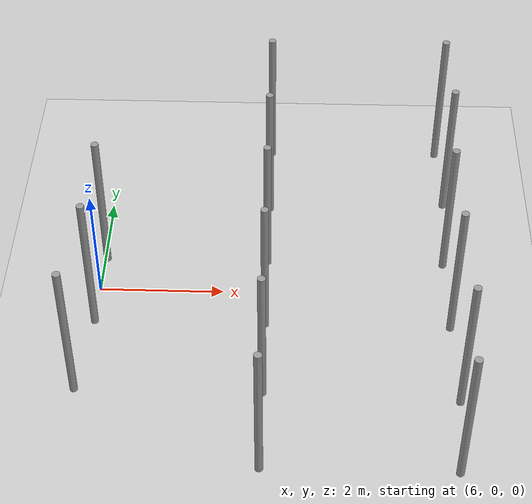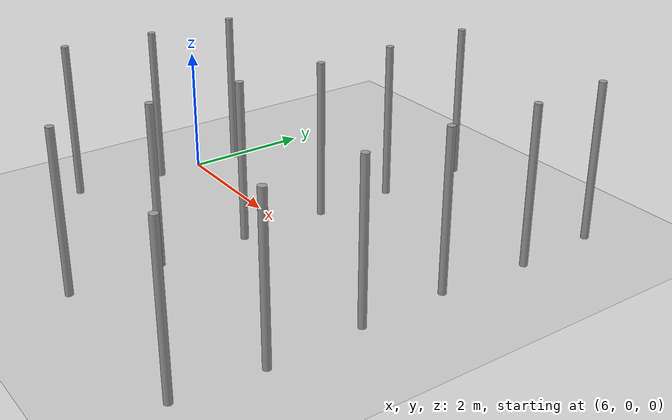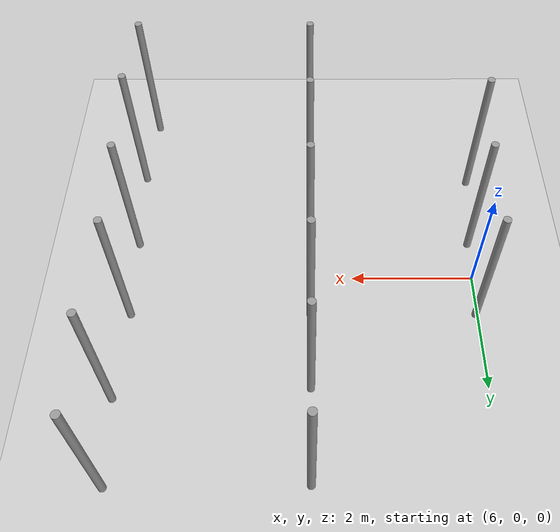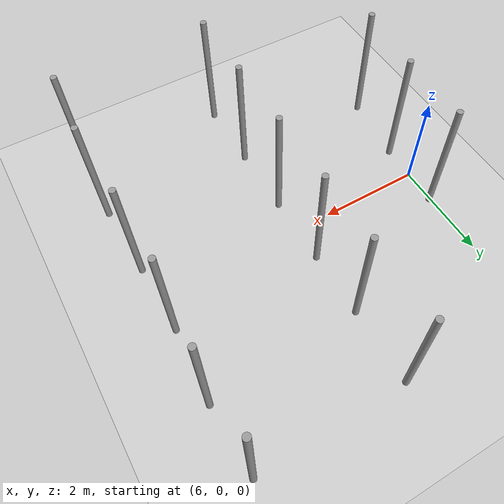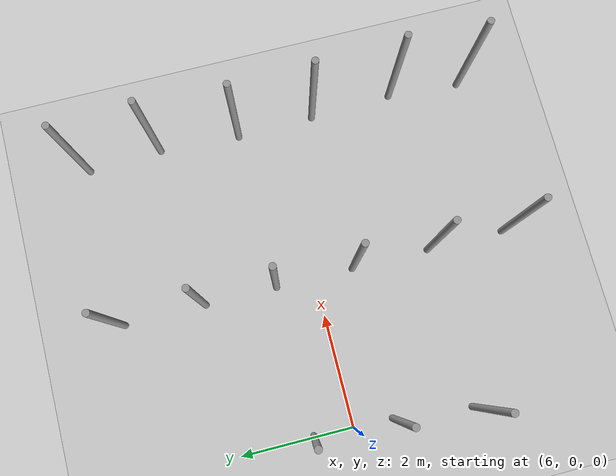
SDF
<sdf version="1.6">
 <world name="default">
  <model name="ground_plane">
   <static>1</static>
   <link name="link">
    <collision name="collision">
     <geometry><plane><normal>0 0 1</normal><size>100 100</size></plane></geometry>
     <surface><friction><ode><mu>100</mu><mu2>50</mu2></ode></friction></surface>
    </collision>
    <visual name="visual">
     <cast_shadows>0</cast_shadows>
     <geometry><plane><normal>0 0 1</normal><size>100 100</size></plane></geometry>
     <material>
      <script><uri>file://media/materials/scripts/gazebo.material</uri><name>Gazebo/Grey</name></script>
     </material>
    </visual>
   </link>
  </model>
  <model name="pole_8">
   <link name="link_0">
    <inertial>
     <mass>0.0364582</mass>
     <inertia>
      <ixx>0.00312124</ixx>
      <ixy>0</ixy>
      <ixz>0</ixz>
      <iyy>0.00312124</iyy>
      <iyz>0</iyz>
      <izz>0.00016615</izz>
     </inertia>
    </inertial>
    <visual name="visual">
     <geometry><cylinder><radius>0.06</radius><length>2.5</length></cylinder></geometry>
     <material>
      <lighting>1</lighting>
      <script><uri>file://media/materials/scripts/gazebo.material</uri><name>Gazebo/Grey</name></script>
      <ambient>0.3 0.3 0.3 1</ambient>
      <diffuse>0.7 0.7 0.7 1</diffuse>
      <specular>0.01 0.01 0.01 1</specular>
      <emissive>0 0 0 1</emissive>
      <shader type="vertex"><normal_map>__default__</normal_map></shader>
     </material>
    </visual>
    <collision name="collision">
     <geometry><cylinder><radius>0.06</radius><length>2.5</length></cylinder></geometry>
     <surface>
      <friction>
       <ode><mu>1</mu><mu2>1</mu2><fdir1>0 0 0</fdir1><slip1>0</slip1><slip2>0</slip2></ode>
       <torsional>
        <coefficient>1</coefficient>
        <patch_radius>0</patch_radius>
        <surface_radius>0</surface_radius>
        <use_patch_radius>1</use_patch_radius>
        <ode><slip>0</slip></ode>
       </torsional>
      </friction>
      <bounce><restitution_coefficient>0</restitution_coefficient><threshold>1e+06</threshold></bounce>
      <contact>
       <collide_without_contact>0</collide_without_contact>
       <collide_without_contact_bitmask>1</collide_without_contact_bitmask>
       <collide_bitmask>1</collide_bitmask>
       <ode>
        <soft_cfm>0</soft_cfm>
        <soft_erp>0.2</soft_erp>
        <kp>1e+13</kp>
        <kd>1</kd>
        <max_vel>0.01</max_vel>
        <min_depth>0</min_depth>
       </ode>
       <bullet>
        <split_impulse>1</split_impulse>
        <split_impulse_penetration_threshold>-0.01</split_impulse_penetration_threshold>
        <soft_cfm>0</soft_cfm>
        <soft_erp>0.2</soft_erp>
        <kp>1e+13</kp>
        <kd>1</kd>
       </bullet>
      </contact>
     </surface>
    </collision>
   </link>
   <static>0</static>
   <pose>5.98908 -0.698438 1.24999 -1e-06 -1e-06 -0.035282</pose>
  </model>
  <model name="pole_10">
   <link name="link_0">
    <inertial>
     <mass>0.0364582</mass>
     <inertia>
      <ixx>0.00312124</ixx>
      <ixy>0</ixy>
      <ixz>0</ixz>
      <iyy>0.00312124</iyy>
      <iyz>0</iyz>
      <izz>0.00016615</izz>
     </inertia>
    </inertial>
    <visual name="visual">
     <geometry><cylinder><radius>0.06</radius><length>2.5</length></cylinder></geometry>
     <material>
      <lighting>1</lighting>
      <script><uri>file://media/materials/scripts/gazebo.material</uri><name>Gazebo/Grey</name></script>
      <ambient>0.3 0.3 0.3 1</ambient>
      <diffuse>0.7 0.7 0.7 1</diffuse>
      <specular>0.01 0.01 0.01 1</specular>
      <emissive>0 0 0 1</emissive>
      <shader type="vertex"><normal_map>__default__</normal_map></shader>
     </material>
    </visual>
    <collision name="collision">
     <geometry><cylinder><radius>0.06</radius><length>2.5</length></cylinder></geometry>
     <surface>
      <friction>
       <ode><mu>1</mu><mu2>1</mu2><fdir1>0 0 0</fdir1><slip1>0</slip1><slip2>0</slip2></ode>
       <torsional>
        <coefficient>1</coefficient>
        <patch_radius>0</patch_radius>
        <surface_radius>0</surface_radius>
        <use_patch_radius>1</use_patch_radius>
        <ode><slip>0</slip></ode>
       </torsional>
      </friction>
      <bounce><restitution_coefficient>0</restitution_coefficient><threshold>1e+06</threshold></bounce>
      <contact>
       <collide_without_contact>0</collide_without_contact>
       <collide_without_contact_bitmask>1</collide_without_contact_bitmask>
       <collide_bitmask>1</collide_bitmask>
       <ode>
        <soft_cfm>0</soft_cfm>
        <soft_erp>0.2</soft_erp>
        <kp>1e+13</kp>
        <kd>1</kd>
        <max_vel>0.01</max_vel>
        <min_depth>0</min_depth>
       </ode>
       <bullet>
        <split_impulse>1</split_impulse>
        <split_impulse_penetration_threshold>-0.01</split_impulse_penetration_threshold>
        <soft_cfm>0</soft_cfm>
        <soft_erp>0.2</soft_erp>
        <kp>1e+13</kp>
        <kd>1</kd>
       </bullet>
      </contact>
     </surface>
    </collision>
   </link>
   <static>0</static>
   <pose>6.03413 0.701475 1.25 1e-06 -3e-06 -0.038245</pose>
  </model>
  <model name="pole_11_clone">
   <link name="link_0">
    <inertial>
     <mass>0.0364582</mass>
     <inertia>
      <ixx>0.00312124</ixx>
      <ixy>0</ixy>
      <ixz>0</ixz>
      <iyy>0.00312124</iyy>
      <iyz>0</iyz>
      <izz>0.00016615</izz>
     </inertia>
    </inertial>
    <visual name="visual">
     <geometry><cylinder><radius>0.06</radius><length>2.5</length></cylinder></geometry>
     <material>
      <lighting>1</lighting>
      <script><uri>file://media/materials/scripts/gazebo.material</uri><name>Gazebo/Grey</name></script>
      <ambient>0.3 0.3 0.3 1</ambient>
      <diffuse>0.7 0.7 0.7 1</diffuse>
      <specular>0.01 0.01 0.01 1</specular>
      <emissive>0 0 0 1</emissive>
      <shader type="vertex"><normal_map>__default__</normal_map></shader>
     </material>
    </visual>
    <collision name="collision">
     <geometry><cylinder><radius>0.06</radius><length>2.5</length></cylinder></geometry>
     <surface>
      <friction>
       <ode><mu>1</mu><mu2>1</mu2><fdir1>0 0 0</fdir1><slip1>0</slip1><slip2>0</slip2></ode>
       <torsional>
        <coefficient>1</coefficient>
        <patch_radius>0</patch_radius>
        <surface_radius>0</surface_radius>
        <use_patch_radius>1</use_patch_radius>
        <ode><slip>0</slip></ode>
       </torsional>
      </friction>
      <bounce><restitution_coefficient>0</restitution_coefficient><threshold>1e+06</threshold></bounce>
      <contact>
       <collide_without_contact>0</collide_without_contact>
       <collide_without_contact_bitmask>1</collide_without_contact_bitmask>
       <collide_bitmask>1</collide_bitmask>
       <ode>
        <soft_cfm>0</soft_cfm>
        <soft_erp>0.2</soft_erp>
        <kp>1e+13</kp>
        <kd>1</kd>
        <max_vel>0.01</max_vel>
        <min_depth>0</min_depth>
       </ode>
       <bullet>
        <split_impulse>1</split_impulse>
        <split_impulse_penetration_threshold>-0.01</split_impulse_penetration_threshold>
        <soft_cfm>0</soft_cfm>
        <soft_erp>0.2</soft_erp>
        <kp>1e+13</kp>
        <kd>1</kd>
       </bullet>
      </contact>
     </surface>
    </collision>
   </link>
   <static>0</static>
   <pose>11.621 3.50157 1.24999 -1e-06 1e-06 -0.045638</pose>
  </model>
  <model name="pole_0">
   <link name="link_0">
    <inertial>
     <mass>0.0364582</mass>
     <inertia>
      <ixx>0.00312124</ixx>
      <ixy>0</ixy>
      <ixz>0</ixz>
      <iyy>0.00312124</iyy>
      <iyz>0</iyz>
      <izz>0.00016615</izz>
     </inertia>
    </inertial>
    <visual name="visual">
     <geometry><cylinder><radius>0.06</radius><length>2.5</length></cylinder></geometry>
     <material>
      <lighting>1</lighting>
      <script><uri>file://media/materials/scripts/gazebo.material</uri><name>Gazebo/Grey</name></script>
      <ambient>0.3 0.3 0.3 1</ambient>
      <diffuse>0.7 0.7 0.7 1</diffuse>
      <specular>0.01 0.01 0.01 1</specular>
      <emissive>0 0 0 1</emissive>
      <shader type="vertex"><normal_map>__default__</normal_map></shader>
     </material>
    </visual>
    <collision name="collision">
     <geometry><cylinder><radius>0.06</radius><length>2.5</length></cylinder></geometry>
     <surface>
      <friction>
       <ode><mu>1</mu><mu2>1</mu2><fdir1>0 0 0</fdir1><slip1>0</slip1><slip2>0</slip2></ode>
       <torsional>
        <coefficient>1</coefficient>
        <patch_radius>0</patch_radius>
        <surface_radius>0</surface_radius>
        <use_patch_radius>1</use_patch_radius>
        <ode><slip>0</slip></ode>
       </torsional>
      </friction>
      <bounce><restitution_coefficient>0</restitution_coefficient><threshold>1e+06</threshold></bounce>
      <contact>
       <collide_without_contact>0</collide_without_contact>
       <collide_without_contact_bitmask>1</collide_without_contact_bitmask>
       <collide_bitmask>1</collide_bitmask>
       <ode>
        <soft_cfm>0</soft_cfm>
        <soft_erp>0.2</soft_erp>
        <kp>1e+13</kp>
        <kd>1</kd>
        <max_vel>0.01</max_vel>
        <min_depth>0</min_depth>
       </ode>
       <bullet>
        <split_impulse>1</split_impulse>
        <split_impulse_penetration_threshold>-0.01</split_impulse_penetration_threshold>
        <soft_cfm>0</soft_cfm>
        <soft_erp>0.2</soft_erp>
        <kp>1e+13</kp>
        <kd>1</kd>
       </bullet>
      </contact>
     </surface>
    </collision>
   </link>
   <static>0</static>
   <pose>8.70001 3.46903 1.24999 -0 1e-06 -0.035994</pose>
  </model>
  <model name="pole_1">
   <link name="link_0">
    <inertial>
     <mass>0.0364582</mass>
     <inertia>
      <ixx>0.00312124</ixx>
      <ixy>0</ixy>
      <ixz>0</ixz>
      <iyy>0.00312124</iyy>
      <iyz>0</iyz>
      <izz>0.00016615</izz>
     </inertia>
    </inertial>
    <visual name="visual">
     <geometry><cylinder><radius>0.06</radius><length>2.5</length></cylinder></geometry>
     <material>
      <lighting>1</lighting>
      <script><uri>file://media/materials/scripts/gazebo.material</uri><name>Gazebo/Grey</name></script>
      <ambient>0.3 0.3 0.3 1</ambient>
      <diffuse>0.7 0.7 0.7 1</diffuse>
      <specular>0.01 0.01 0.01 1</specular>
      <emissive>0 0 0 1</emissive>
      <shader type="vertex"><normal_map>__default__</normal_map></shader>
     </material>
    </visual>
    <collision name="collision">
     <geometry><cylinder><radius>0.06</radius><length>2.5</length></cylinder></geometry>
     <surface>
      <friction>
       <ode><mu>1</mu><mu2>1</mu2><fdir1>0 0 0</fdir1><slip1>0</slip1><slip2>0</slip2></ode>
       <torsional>
        <coefficient>1</coefficient>
        <patch_radius>0</patch_radius>
        <surface_radius>0</surface_radius>
        <use_patch_radius>1</use_patch_radius>
        <ode><slip>0</slip></ode>
       </torsional>
      </friction>
      <bounce><restitution_coefficient>0</restitution_coefficient><threshold>1e+06</threshold></bounce>
      <contact>
       <collide_without_contact>0</collide_without_contact>
       <collide_without_contact_bitmask>1</collide_without_contact_bitmask>
       <collide_bitmask>1</collide_bitmask>
       <ode>
        <soft_cfm>0</soft_cfm>
        <soft_erp>0.2</soft_erp>
        <kp>1e+13</kp>
        <kd>1</kd>
        <max_vel>0.01</max_vel>
        <min_depth>0</min_depth>
       </ode>
       <bullet>
        <split_impulse>1</split_impulse>
        <split_impulse_penetration_threshold>-0.01</split_impulse_penetration_threshold>
        <soft_cfm>0</soft_cfm>
        <soft_erp>0.2</soft_erp>
        <kp>1e+13</kp>
        <kd>1</kd>
       </bullet>
      </contact>
     </surface>
    </collision>
   </link>
   <static>0</static>
   <pose>11.6854 2.16341 1.25 -1e-06 -0 -0.035905</pose>
  </model>
  <model name="pole_3">
   <link name="link_0">
    <inertial>
     <mass>0.0364582</mass>
     <inertia>
      <ixx>0.00312124</ixx>
      <ixy>0</ixy>
      <ixz>0</ixz>
      <iyy>0.00312124</iyy>
      <iyz>0</iyz>
      <izz>0.00016615</izz>
     </inertia>
    </inertial>
    <visual name="visual">
     <geometry><cylinder><radius>0.06</radius><length>2.5</length></cylinder></geometry>
     <material>
      <lighting>1</lighting>
      <script><uri>file://media/materials/scripts/gazebo.material</uri><name>Gazebo/Grey</name></script>
      <ambient>0.3 0.3 0.3 1</ambient>
      <diffuse>0.7 0.7 0.7 1</diffuse>
      <specular>0.01 0.01 0.01 1</specular>
      <emissive>0 0 0 1</emissive>
      <shader type="vertex"><normal_map>__default__</normal_map></shader>
     </material>
    </visual>
    <collision name="collision">
     <geometry><cylinder><radius>0.06</radius><length>2.5</length></cylinder></geometry>
     <surface>
      <friction>
       <ode><mu>1</mu><mu2>1</mu2><fdir1>0 0 0</fdir1><slip1>0</slip1><slip2>0</slip2></ode>
       <torsional>
        <coefficient>1</coefficient>
        <patch_radius>0</patch_radius>
        <surface_radius>0</surface_radius>
        <use_patch_radius>1</use_patch_radius>
        <ode><slip>0</slip></ode>
       </torsional>
      </friction>
      <bounce><restitution_coefficient>0</restitution_coefficient><threshold>1e+06</threshold></bounce>
      <contact>
       <collide_without_contact>0</collide_without_contact>
       <collide_without_contact_bitmask>1</collide_without_contact_bitmask>
       <collide_bitmask>1</collide_bitmask>
       <ode>
        <soft_cfm>0</soft_cfm>
        <soft_erp>0.2</soft_erp>
        <kp>1e+13</kp>
        <kd>1</kd>
        <max_vel>0.01</max_vel>
        <min_depth>0</min_depth>
       </ode>
       <bullet>
        <split_impulse>1</split_impulse>
        <split_impulse_penetration_threshold>-0.01</split_impulse_penetration_threshold>
        <soft_cfm>0</soft_cfm>
        <soft_erp>0.2</soft_erp>
        <kp>1e+13</kp>
        <kd>1</kd>
       </bullet>
      </contact>
     </surface>
    </collision>
   </link>
   <static>0</static>
   <pose>8.7002 -0.698404 1.24999 -1e-06 1e-06 -0.031552</pose>
  </model>
  <model name="pole_5">
   <link name="link_0">
    <inertial>
     <mass>0.0364582</mass>
     <inertia>
      <ixx>0.00312124</ixx>
      <ixy>0</ixy>
      <ixz>0</ixz>
      <iyy>0.00312124</iyy>
      <iyz>0</iyz>
      <izz>0.00016615</izz>
     </inertia>
    </inertial>
    <visual name="visual">
     <geometry><cylinder><radius>0.06</radius><length>2.5</length></cylinder></geometry>
     <material>
      <lighting>1</lighting>
      <script><uri>file://media/materials/scripts/gazebo.material</uri><name>Gazebo/Grey</name></script>
      <ambient>0.3 0.3 0.3 1</ambient>
      <diffuse>0.7 0.7 0.7 1</diffuse>
      <specular>0.01 0.01 0.01 1</specular>
      <emissive>0 0 0 1</emissive>
      <shader type="vertex"><normal_map>__default__</normal_map></shader>
     </material>
    </visual>
    <collision name="collision">
     <geometry><cylinder><radius>0.06</radius><length>2.5</length></cylinder></geometry>
     <surface>
      <friction>
       <ode><mu>1</mu><mu2>1</mu2><fdir1>0 0 0</fdir1><slip1>0</slip1><slip2>0</slip2></ode>
       <torsional>
        <coefficient>1</coefficient>
        <patch_radius>0</patch_radius>
        <surface_radius>0</surface_radius>
        <use_patch_radius>1</use_patch_radius>
        <ode><slip>0</slip></ode>
       </torsional>
      </friction>
      <bounce><restitution_coefficient>0</restitution_coefficient><threshold>1e+06</threshold></bounce>
      <contact>
       <collide_without_contact>0</collide_without_contact>
       <collide_without_contact_bitmask>1</collide_without_contact_bitmask>
       <collide_bitmask>1</collide_bitmask>
       <ode>
        <soft_cfm>0</soft_cfm>
        <soft_erp>0.2</soft_erp>
        <kp>1e+13</kp>
        <kd>1</kd>
        <max_vel>0.01</max_vel>
        <min_depth>0</min_depth>
       </ode>
       <bullet>
        <split_impulse>1</split_impulse>
        <split_impulse_penetration_threshold>-0.01</split_impulse_penetration_threshold>
        <soft_cfm>0</soft_cfm>
        <soft_erp>0.2</soft_erp>
        <kp>1e+13</kp>
        <kd>1</kd>
       </bullet>
      </contact>
     </surface>
    </collision>
   </link>
   <static>0</static>
   <pose>11.634 -0.698543 1.25 0 2e-06 -0.030068</pose>
  </model>
  <model name="pole_6">
   <link name="link_0">
    <inertial>
     <mass>0.0364582</mass>
     <inertia>
      <ixx>0.00312124</ixx>
      <ixy>0</ixy>
      <ixz>0</ixz>
      <iyy>0.00312124</iyy>
      <iyz>0</iyz>
      <izz>0.00016615</izz>
     </inertia>
    </inertial>
    <visual name="visual">
     <geometry><cylinder><radius>0.06</radius><length>2.5</length></cylinder></geometry>
     <material>
      <lighting>1</lighting>
      <script><uri>file://media/materials/scripts/gazebo.material</uri><name>Gazebo/Grey</name></script>
      <ambient>0.3 0.3 0.3 1</ambient>
      <diffuse>0.7 0.7 0.7 1</diffuse>
      <specular>0.01 0.01 0.01 1</specular>
      <emissive>0 0 0 1</emissive>
      <shader type="vertex"><normal_map>__default__</normal_map></shader>
     </material>
    </visual>
    <collision name="collision">
     <geometry><cylinder><radius>0.06</radius><length>2.5</length></cylinder></geometry>
     <surface>
      <friction>
       <ode><mu>1</mu><mu2>1</mu2><fdir1>0 0 0</fdir1><slip1>0</slip1><slip2>0</slip2></ode>
       <torsional>
        <coefficient>1</coefficient>
        <patch_radius>0</patch_radius>
        <surface_radius>0</surface_radius>
        <use_patch_radius>1</use_patch_radius>
        <ode><slip>0</slip></ode>
       </torsional>
      </friction>
      <bounce><restitution_coefficient>0</restitution_coefficient><threshold>1e+06</threshold></bounce>
      <contact>
       <collide_without_contact>0</collide_without_contact>
       <collide_without_contact_bitmask>1</collide_without_contact_bitmask>
       <collide_bitmask>1</collide_bitmask>
       <ode>
        <soft_cfm>0</soft_cfm>
        <soft_erp>0.2</soft_erp>
        <kp>1e+13</kp>
        <kd>1</kd>
        <max_vel>0.01</max_vel>
        <min_depth>0</min_depth>
       </ode>
       <bullet>
        <split_impulse>1</split_impulse>
        <split_impulse_penetration_threshold>-0.01</split_impulse_penetration_threshold>
        <soft_cfm>0</soft_cfm>
        <soft_erp>0.2</soft_erp>
        <kp>1e+13</kp>
        <kd>1</kd>
       </bullet>
      </contact>
     </surface>
    </collision>
   </link>
   <static>0</static>
   <pose>11.6001 0.701142 1.25 0 1e-06 -0.031859</pose>
  </model>
  <model name="pole_7">
   <link name="link_0">
    <inertial>
     <mass>0.0364582</mass>
     <inertia>
      <ixx>0.00312124</ixx>
      <ixy>0</ixy>
      <ixz>0</ixz>
      <iyy>0.00312124</iyy>
      <iyz>0</iyz>
      <izz>0.00016615</izz>
     </inertia>
    </inertial>
    <visual name="visual">
     <geometry><cylinder><radius>0.06</radius><length>2.5</length></cylinder></geometry>
     <material>
      <lighting>1</lighting>
      <script><uri>file://media/materials/scripts/gazebo.material</uri><name>Gazebo/Grey</name></script>
      <ambient>0.3 0.3 0.3 1</ambient>
      <diffuse>0.7 0.7 0.7 1</diffuse>
      <specular>0.01 0.01 0.01 1</specular>
      <emissive>0 0 0 1</emissive>
      <shader type="vertex"><normal_map>__default__</normal_map></shader>
     </material>
    </visual>
    <collision name="collision">
     <geometry><cylinder><radius>0.06</radius><length>2.5</length></cylinder></geometry>
     <surface>
      <friction>
       <ode><mu>1</mu><mu2>1</mu2><fdir1>0 0 0</fdir1><slip1>0</slip1><slip2>0</slip2></ode>
       <torsional>
        <coefficient>1</coefficient>
        <patch_radius>0</patch_radius>
        <surface_radius>0</surface_radius>
        <use_patch_radius>1</use_patch_radius>
        <ode><slip>0</slip></ode>
       </torsional>
      </friction>
      <bounce><restitution_coefficient>0</restitution_coefficient><threshold>1e+06</threshold></bounce>
      <contact>
       <collide_without_contact>0</collide_without_contact>
       <collide_without_contact_bitmask>1</collide_without_contact_bitmask>
       <collide_bitmask>1</collide_bitmask>
       <ode>
        <soft_cfm>0</soft_cfm>
        <soft_erp>0.2</soft_erp>
        <kp>1e+13</kp>
        <kd>1</kd>
        <max_vel>0.01</max_vel>
        <min_depth>0</min_depth>
       </ode>
       <bullet>
        <split_impulse>1</split_impulse>
        <split_impulse_penetration_threshold>-0.01</split_impulse_penetration_threshold>
        <soft_cfm>0</soft_cfm>
        <soft_erp>0.2</soft_erp>
        <kp>1e+13</kp>
        <kd>1</kd>
       </bullet>
      </contact>
     </surface>
    </collision>
   </link>
   <static>0</static>
   <pose>8.70017 0.701411 1.24999 0 0 -0.028603</pose>
  </model>
  <model name="pole_15">
   <link name="link_0">
    <inertial>
     <mass>0.0364582</mass>
     <inertia>
      <ixx>0.00312124</ixx>
      <ixy>0</ixy>
      <ixz>0</ixz>
      <iyy>0.00312124</iyy>
      <iyz>0</iyz>
      <izz>0.00016615</izz>
     </inertia>
    </inertial>
    <visual name="visual">
     <geometry><cylinder><radius>0.06</radius><length>2.5</length></cylinder></geometry>
     <material>
      <lighting>1</lighting>
      <script><uri>file://media/materials/scripts/gazebo.material</uri><name>Gazebo/Grey</name></script>
      <ambient>0.3 0.3 0.3 1</ambient>
      <diffuse>0.7 0.7 0.7 1</diffuse>
      <specular>0.01 0.01 0.01 1</specular>
      <emissive>0 0 0 1</emissive>
      <shader type="vertex"><normal_map>__default__</normal_map></shader>
     </material>
    </visual>
    <collision name="collision">
     <geometry><cylinder><radius>0.06</radius><length>2.5</length></cylinder></geometry>
     <surface>
      <friction>
       <ode><mu>1</mu><mu2>1</mu2><fdir1>0 0 0</fdir1><slip1>0</slip1><slip2>0</slip2></ode>
       <torsional>
        <coefficient>1</coefficient>
        <patch_radius>0</patch_radius>
        <surface_radius>0</surface_radius>
        <use_patch_radius>1</use_patch_radius>
        <ode><slip>0</slip></ode>
       </torsional>
      </friction>
      <bounce><restitution_coefficient>0</restitution_coefficient><threshold>1e+06</threshold></bounce>
      <contact>
       <collide_without_contact>0</collide_without_contact>
       <collide_without_contact_bitmask>1</collide_without_contact_bitmask>
       <collide_bitmask>1</collide_bitmask>
       <ode>
        <soft_cfm>0</soft_cfm>
        <soft_erp>0.2</soft_erp>
        <kp>1e+13</kp>
        <kd>1</kd>
        <max_vel>0.01</max_vel>
        <min_depth>0</min_depth>
       </ode>
       <bullet>
        <split_impulse>1</split_impulse>
        <split_impulse_penetration_threshold>-0.01</split_impulse_penetration_threshold>
        <soft_cfm>0</soft_cfm>
        <soft_erp>0.2</soft_erp>
        <kp>1e+13</kp>
        <kd>1</kd>
       </bullet>
      </contact>
     </surface>
    </collision>
   </link>
   <static>0</static>
   <pose>11.6 -3.4995 1.24999 0 1e-06 -0.026089</pose>
  </model>
  <model name="pole_17">
   <link name="link_0">
    <inertial>
     <mass>0.0364582</mass>
     <inertia>
      <ixx>0.00312124</ixx>
      <ixy>0</ixy>
      <ixz>0</ixz>
      <iyy>0.00312124</iyy>
      <iyz>0</iyz>
      <izz>0.00016615</izz>
     </inertia>
    </inertial>
    <visual name="visual">
     <geometry><cylinder><radius>0.06</radius><length>2.5</length></cylinder></geometry>
     <material>
      <lighting>1</lighting>
      <script><uri>file://media/materials/scripts/gazebo.material</uri><name>Gazebo/Grey</name></script>
      <ambient>0.3 0.3 0.3 1</ambient>
      <diffuse>0.7 0.7 0.7 1</diffuse>
      <specular>0.01 0.01 0.01 1</specular>
      <emissive>0 0 0 1</emissive>
      <shader type="vertex"><normal_map>__default__</normal_map></shader>
     </material>
    </visual>
    <collision name="collision">
     <geometry><cylinder><radius>0.06</radius><length>2.5</length></cylinder></geometry>
     <surface>
      <friction>
       <ode><mu>1</mu><mu2>1</mu2><fdir1>0 0 0</fdir1><slip1>0</slip1><slip2>0</slip2></ode>
       <torsional>
        <coefficient>1</coefficient>
        <patch_radius>0</patch_radius>
        <surface_radius>0</surface_radius>
        <use_patch_radius>1</use_patch_radius>
        <ode><slip>0</slip></ode>
       </torsional>
      </friction>
      <bounce><restitution_coefficient>0</restitution_coefficient><threshold>1e+06</threshold></bounce>
      <contact>
       <collide_without_contact>0</collide_without_contact>
       <collide_without_contact_bitmask>1</collide_without_contact_bitmask>
       <collide_bitmask>1</collide_bitmask>
       <ode>
        <soft_cfm>0</soft_cfm>
        <soft_erp>0.2</soft_erp>
        <kp>1e+13</kp>
        <kd>1</kd>
        <max_vel>0.01</max_vel>
        <min_depth>0</min_depth>
       </ode>
       <bullet>
        <split_impulse>1</split_impulse>
        <split_impulse_penetration_threshold>-0.01</split_impulse_penetration_threshold>
        <soft_cfm>0</soft_cfm>
        <soft_erp>0.2</soft_erp>
        <kp>1e+13</kp>
        <kd>1</kd>
       </bullet>
      </contact>
     </surface>
    </collision>
   </link>
   <static>0</static>
   <pose>5.83623 -2.09925 1.24999 1e-06 3e-06 -0.025257</pose>
  </model>
  <model name="pole_20">
   <link name="link_0">
    <inertial>
     <mass>0.0364582</mass>
     <inertia>
      <ixx>0.00312124</ixx>
      <ixy>0</ixy>
      <ixz>0</ixz>
      <iyy>0.00312124</iyy>
      <iyz>0</iyz>
      <izz>0.00016615</izz>
     </inertia>
    </inertial>
    <visual name="visual">
     <geometry><cylinder><radius>0.06</radius><length>2.5</length></cylinder></geometry>
     <material>
      <lighting>1</lighting>
      <script><uri>file://media/materials/scripts/gazebo.material</uri><name>Gazebo/Grey</name></script>
      <ambient>0.3 0.3 0.3 1</ambient>
      <diffuse>0.7 0.7 0.7 1</diffuse>
      <specular>0.01 0.01 0.01 1</specular>
      <emissive>0 0 0 1</emissive>
      <shader type="vertex"><normal_map>__default__</normal_map></shader>
     </material>
    </visual>
    <collision name="collision">
     <geometry><cylinder><radius>0.06</radius><length>2.5</length></cylinder></geometry>
     <surface>
      <friction>
       <ode><mu>1</mu><mu2>1</mu2><fdir1>0 0 0</fdir1><slip1>0</slip1><slip2>0</slip2></ode>
       <torsional>
        <coefficient>1</coefficient>
        <patch_radius>0</patch_radius>
        <surface_radius>0</surface_radius>
        <use_patch_radius>1</use_patch_radius>
        <ode><slip>0</slip></ode>
       </torsional>
      </friction>
      <bounce><restitution_coefficient>0</restitution_coefficient><threshold>1e+06</threshold></bounce>
      <contact>
       <collide_without_contact>0</collide_without_contact>
       <collide_without_contact_bitmask>1</collide_without_contact_bitmask>
       <collide_bitmask>1</collide_bitmask>
       <ode>
        <soft_cfm>0</soft_cfm>
        <soft_erp>0.2</soft_erp>
        <kp>1e+13</kp>
        <kd>1</kd>
        <max_vel>0.01</max_vel>
        <min_depth>0</min_depth>
       </ode>
       <bullet>
        <split_impulse>1</split_impulse>
        <split_impulse_penetration_threshold>-0.01</split_impulse_penetration_threshold>
        <soft_cfm>0</soft_cfm>
        <soft_erp>0.2</soft_erp>
        <kp>1e+13</kp>
        <kd>1</kd>
       </bullet>
      </contact>
     </surface>
    </collision>
   </link>
   <static>0</static>
   <pose>11.6918 -2.19602 1.24999 -1e-06 1e-06 -0.025338</pose>
  </model>
  <model name="pole_21">
   <link name="link_0">
    <inertial>
     <mass>0.0364582</mass>
     <inertia>
      <ixx>0.00312124</ixx>
      <ixy>0</ixy>
      <ixz>0</ixz>
      <iyy>0.00312124</iyy>
      <iyz>0</iyz>
      <izz>0.00016615</izz>
     </inertia>
    </inertial>
    <visual name="visual">
     <geometry><cylinder><radius>0.06</radius><length>2.5</length></cylinder></geometry>
     <material>
      <lighting>1</lighting>
      <script><uri>file://media/materials/scripts/gazebo.material</uri><name>Gazebo/Grey</name></script>
      <ambient>0.3 0.3 0.3 1</ambient>
      <diffuse>0.7 0.7 0.7 1</diffuse>
      <specular>0.01 0.01 0.01 1</specular>
      <emissive>0 0 0 1</emissive>
      <shader type="vertex"><normal_map>__default__</normal_map></shader>
     </material>
    </visual>
    <collision name="collision">
     <geometry><cylinder><radius>0.06</radius><length>2.5</length></cylinder></geometry>
     <surface>
      <friction>
       <ode><mu>1</mu><mu2>1</mu2><fdir1>0 0 0</fdir1><slip1>0</slip1><slip2>0</slip2></ode>
       <torsional>
        <coefficient>1</coefficient>
        <patch_radius>0</patch_radius>
        <surface_radius>0</surface_radius>
        <use_patch_radius>1</use_patch_radius>
        <ode><slip>0</slip></ode>
       </torsional>
      </friction>
      <bounce><restitution_coefficient>0</restitution_coefficient><threshold>1e+06</threshold></bounce>
      <contact>
       <collide_without_contact>0</collide_without_contact>
       <collide_without_contact_bitmask>1</collide_without_contact_bitmask>
       <collide_bitmask>1</collide_bitmask>
       <ode>
        <soft_cfm>0</soft_cfm>
        <soft_erp>0.2</soft_erp>
        <kp>1e+13</kp>
        <kd>1</kd>
        <max_vel>0.01</max_vel>
        <min_depth>0</min_depth>
       </ode>
       <bullet>
        <split_impulse>1</split_impulse>
        <split_impulse_penetration_threshold>-0.01</split_impulse_penetration_threshold>
        <soft_cfm>0</soft_cfm>
        <soft_erp>0.2</soft_erp>
        <kp>1e+13</kp>
        <kd>1</kd>
       </bullet>
      </contact>
     </surface>
    </collision>
   </link>
   <static>0</static>
   <pose>8.69986 -3.49944 1.25 1e-06 1e-06 0.666232</pose>
  </model>
  <model name="pole_22">
   <link name="link_0">
    <inertial>
     <mass>0.0364582</mass>
     <inertia>
      <ixx>0.00312124</ixx>
      <ixy>0</ixy>
      <ixz>0</ixz>
      <iyy>0.00312124</iyy>
      <iyz>0</iyz>
      <izz>0.00016615</izz>
     </inertia>
    </inertial>
    <visual name="visual">
     <geometry><cylinder><radius>0.06</radius><length>2.5</length></cylinder></geometry>
     <material>
      <lighting>1</lighting>
      <script><uri>file://media/materials/scripts/gazebo.material</uri><name>Gazebo/Grey</name></script>
      <ambient>0.3 0.3 0.3 1</ambient>
      <diffuse>0.7 0.7 0.7 1</diffuse>
      <specular>0.01 0.01 0.01 1</specular>
      <emissive>0 0 0 1</emissive>
      <shader type="vertex"><normal_map>__default__</normal_map></shader>
     </material>
    </visual>
    <collision name="collision">
     <geometry><cylinder><radius>0.06</radius><length>2.5</length></cylinder></geometry>
     <surface>
      <friction>
       <ode><mu>1</mu><mu2>1</mu2><fdir1>0 0 0</fdir1><slip1>0</slip1><slip2>0</slip2></ode>
       <torsional>
        <coefficient>1</coefficient>
        <patch_radius>0</patch_radius>
        <surface_radius>0</surface_radius>
        <use_patch_radius>1</use_patch_radius>
        <ode><slip>0</slip></ode>
       </torsional>
      </friction>
      <bounce><restitution_coefficient>0</restitution_coefficient><threshold>1e+06</threshold></bounce>
      <contact>
       <collide_without_contact>0</collide_without_contact>
       <collide_without_contact_bitmask>1</collide_without_contact_bitmask>
       <collide_bitmask>1</collide_bitmask>
       <ode>
        <soft_cfm>0</soft_cfm>
        <soft_erp>0.2</soft_erp>
        <kp>1e+13</kp>
        <kd>1</kd>
        <max_vel>0.01</max_vel>
        <min_depth>0</min_depth>
       </ode>
       <bullet>
        <split_impulse>1</split_impulse>
        <split_impulse_penetration_threshold>-0.01</split_impulse_penetration_threshold>
        <soft_cfm>0</soft_cfm>
        <soft_erp>0.2</soft_erp>
        <kp>1e+13</kp>
        <kd>1</kd>
       </bullet>
      </contact>
     </surface>
    </collision>
   </link>
   <static>0</static>
   <pose>8.70011 -2.09937 1.24999 -1e-06 3e-06 -0.020391</pose>
  </model>
  <model name="pole_23">
   <link name="link_0">
    <inertial>
     <mass>0.0364582</mass>
     <inertia>
      <ixx>0.00312124</ixx>
      <ixy>0</ixy>
      <ixz>0</ixz>
      <iyy>0.00312124</iyy>
      <iyz>0</iyz>
      <izz>0.00016615</izz>
     </inertia>
    </inertial>
    <visual name="visual">
     <geometry><cylinder><radius>0.06</radius><length>2.5</length></cylinder></geometry>
     <material>
      <lighting>1</lighting>
      <script><uri>file://media/materials/scripts/gazebo.material</uri><name>Gazebo/Grey</name></script>
      <ambient>0.3 0.3 0.3 1</ambient>
      <diffuse>0.7 0.7 0.7 1</diffuse>
      <specular>0.01 0.01 0.01 1</specular>
      <emissive>0 0 0 1</emissive>
      <shader type="vertex"><normal_map>__default__</normal_map></shader>
     </material>
    </visual>
    <collision name="collision">
     <geometry><cylinder><radius>0.06</radius><length>2.5</length></cylinder></geometry>
     <surface>
      <friction>
       <ode><mu>1</mu><mu2>1</mu2><fdir1>0 0 0</fdir1><slip1>0</slip1><slip2>0</slip2></ode>
       <torsional>
        <coefficient>1</coefficient>
        <patch_radius>0</patch_radius>
        <surface_radius>0</surface_radius>
        <use_patch_radius>1</use_patch_radius>
        <ode><slip>0</slip></ode>
       </torsional>
      </friction>
      <bounce><restitution_coefficient>0</restitution_coefficient><threshold>1e+06</threshold></bounce>
      <contact>
       <collide_without_contact>0</collide_without_contact>
       <collide_without_contact_bitmask>1</collide_without_contact_bitmask>
       <collide_bitmask>1</collide_bitmask>
       <ode>
        <soft_cfm>0</soft_cfm>
        <soft_erp>0.2</soft_erp>
        <kp>1e+13</kp>
        <kd>1</kd>
        <max_vel>0.01</max_vel>
        <min_depth>0</min_depth>
       </ode>
       <bullet>
        <split_impulse>1</split_impulse>
        <split_impulse_penetration_threshold>-0.01</split_impulse_penetration_threshold>
        <soft_cfm>0</soft_cfm>
        <soft_erp>0.2</soft_erp>
        <kp>1e+13</kp>
        <kd>1</kd>
       </bullet>
      </contact>
     </surface>
    </collision>
   </link>
   <static>0</static>
   <pose>8.7 1.99706 1.24999 -1e-06 1e-06 -0.022228</pose>
  </model>
 </world>
</sdf>
